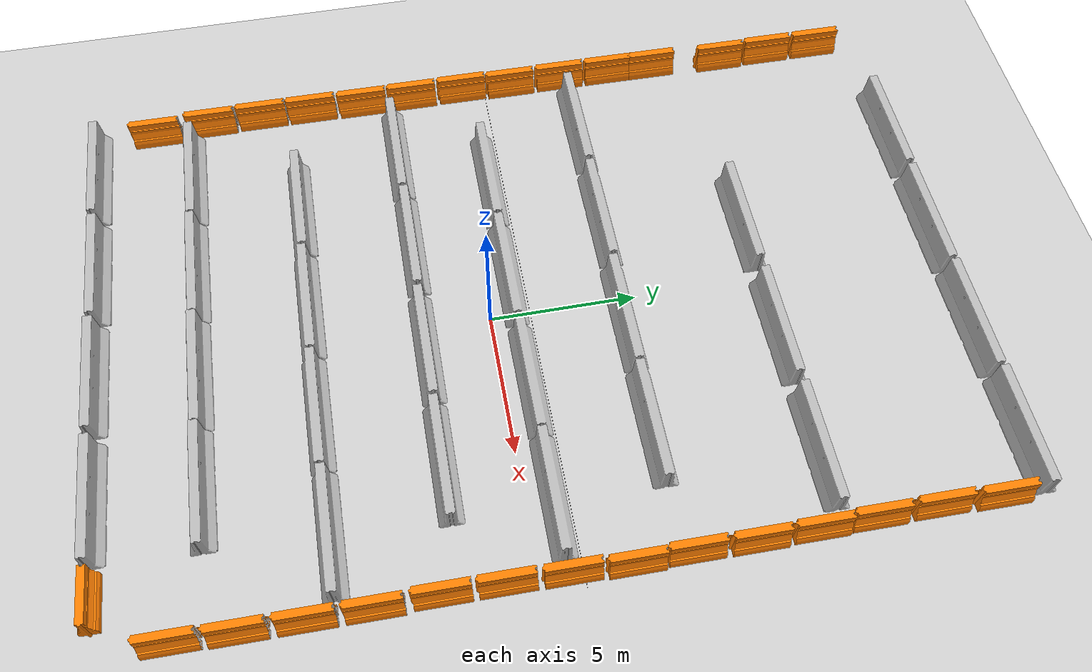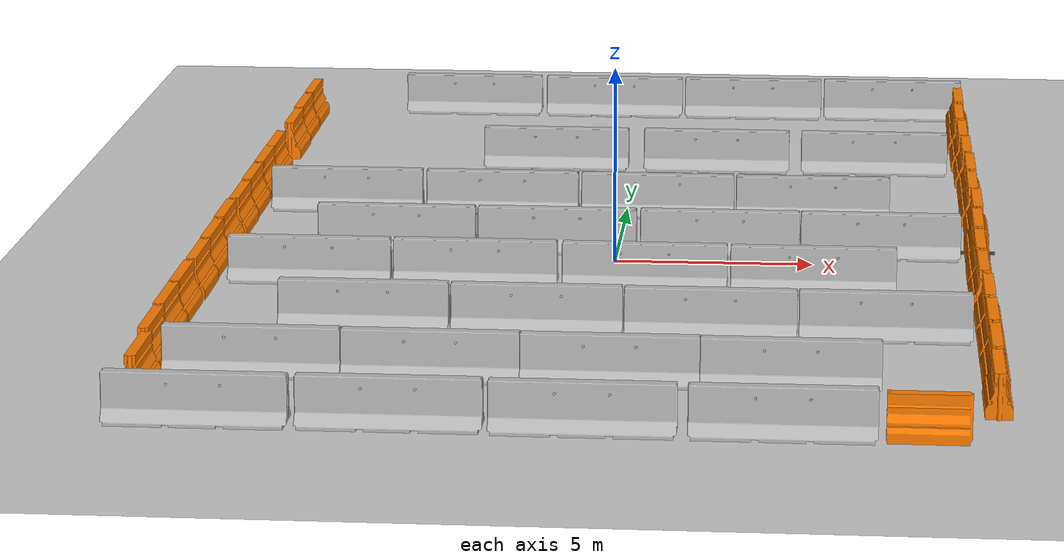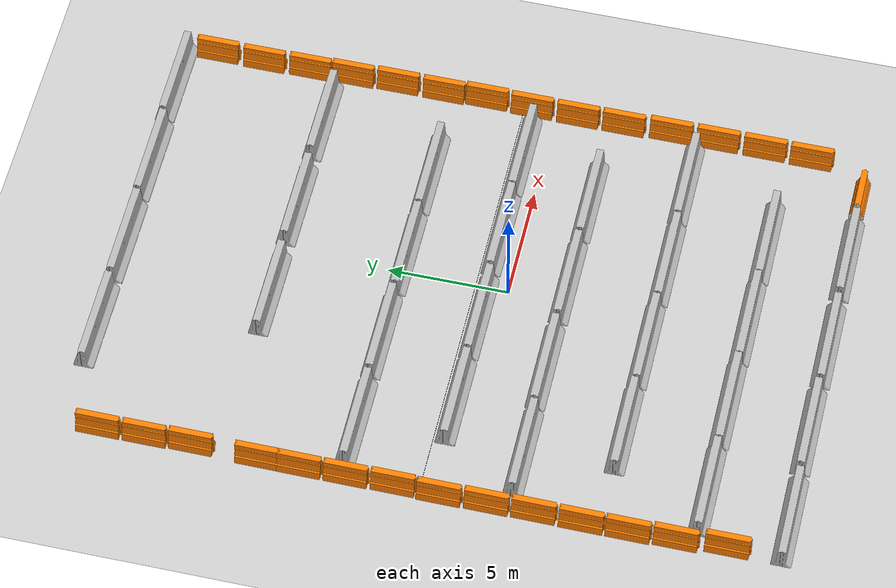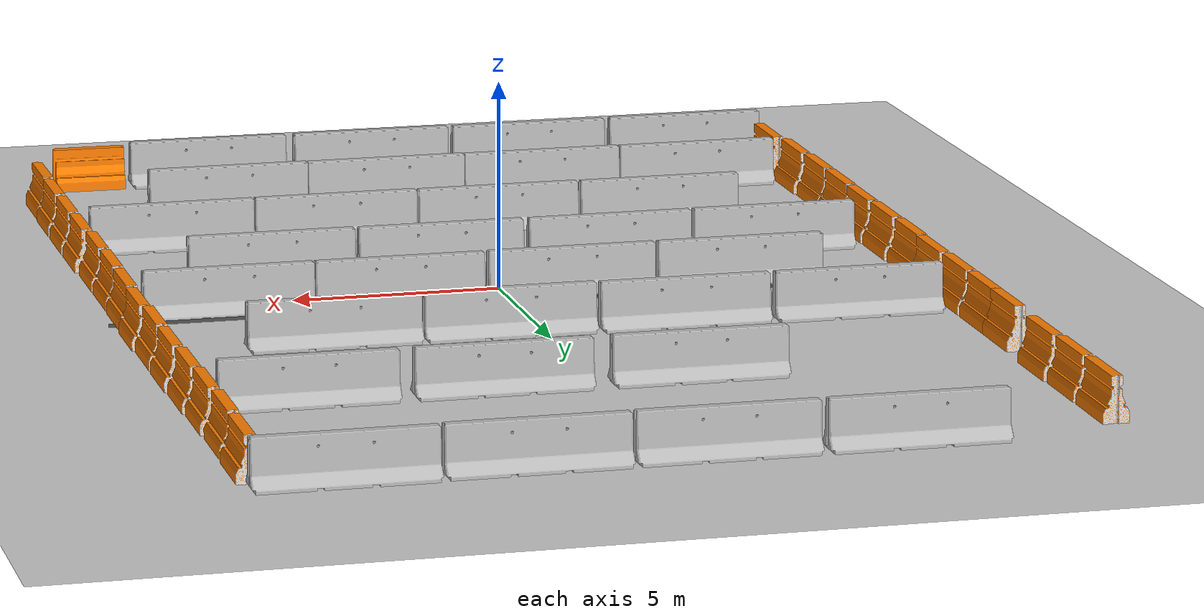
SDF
<sdf version="1.6">
 <world name="default">
  <light name="sun" type="directional">
   <pose>0 0 10 0 -0 0</pose>
   <diffuse>0.8 0.8 0.8 1</diffuse>
   <specular>0.2 0.2 0.2 1</specular>
   <attenuation>
    <range>1000</range>
    <constant>0.9</constant>
    <linear>0.01</linear>
    <quadratic>0.001</quadratic>
   </attenuation>
   <direction>-0.5 0.1 -0.9</direction>
  </light>
  <model name="ground_plane">
   <static>1</static>
   <link name="link">
    <collision name="collision">
     <geometry><plane><normal>0 0 1</normal><size>100 100</size></plane></geometry>
     <surface>
      <contact><collide_bitmask>65535</collide_bitmask></contact>
      <friction><ode><mu>100</mu><mu2>50</mu2></ode></friction>
     </surface>
    </collision>
    <visual name="visual">
     <cast_shadows>0</cast_shadows>
     <geometry><plane><normal>0 0 1</normal><size>100 100</size></plane></geometry>
     <material>
      <script><uri>file://media/materials/scripts/gazebo.material</uri><name>Gazebo/Grey</name></script>
     </material>
    </visual>
   </link>
  </model>
  <gravity>0 0 -9.8</gravity>
  <magnetic_field>6e-06 2.3e-05 -4.2e-05</magnetic_field>
  <atmosphere type="adiabatic"/>
  <physics name="default_physics" default="0" type="ode">
   <max_step_size>0.001</max_step_size>
   <real_time_factor>1</real_time_factor>
   <real_time_update_rate>1000</real_time_update_rate>
  </physics>
  <scene><ambient>0.4 0.4 0.4 1</ambient><background>0.7 0.7 0.7 1</background><shadows>1</shadows></scene>
  <audio><device>default</device></audio>
  <spherical_coordinates>
   <surface_model>EARTH_WGS84</surface_model>
   <latitude_deg>0</latitude_deg>
   <longitude_deg>0</longitude_deg>
   <elevation>0</elevation>
   <heading_deg>0</heading_deg>
  </spherical_coordinates>
  <model name="drc_practice_organge_jersey_barrier">
   <static>1</static>
   <link name="link">
    <visual name="visual">
     <geometry>
      <mesh><uri>model://drc_practice_orange_jersey_barrier/meshes/jersey_barrier.dae</uri></mesh>
     </geometry>
    </visual>
    <collision name="collision">
     <geometry>
      <mesh><uri>model://drc_practice_orange_jersey_barrier/meshes/jersey_barrier.dae</uri></mesh>
     </geometry>
    </collision>
   </link>
   <pose>-10.0317 -8.91698 0 0 -0 0</pose>
  </model>
  <model name="drc_practice_organge_jersey_barrier_clone">
   <static>1</static>
   <link name="link">
    <visual name="visual">
     <geometry>
      <mesh><uri>model://drc_practice_orange_jersey_barrier/meshes/jersey_barrier.dae</uri></mesh>
     </geometry>
    </visual>
    <collision name="collision">
     <geometry>
      <mesh><uri>model://drc_practice_orange_jersey_barrier/meshes/jersey_barrier.dae</uri></mesh>
     </geometry>
    </collision>
   </link>
   <pose>-10.0715 -7.03277 0 0 -0 0</pose>
  </model>
  <model name="drc_practice_organge_jersey_barrier_clone_0">
   <static>1</static>
   <link name="link">
    <visual name="visual">
     <geometry>
      <mesh><uri>model://drc_practice_orange_jersey_barrier/meshes/jersey_barrier.dae</uri></mesh>
     </geometry>
    </visual>
    <collision name="collision">
     <geometry>
      <mesh><uri>model://drc_practice_orange_jersey_barrier/meshes/jersey_barrier.dae</uri></mesh>
     </geometry>
    </collision>
   </link>
   <pose>-10.0681 -5.17272 0 0 -0 0</pose>
  </model>
  <model name="drc_practice_organge_jersey_barrier_clone_1">
   <static>1</static>
   <link name="link">
    <visual name="visual">
     <geometry>
      <mesh><uri>model://drc_practice_orange_jersey_barrier/meshes/jersey_barrier.dae</uri></mesh>
     </geometry>
    </visual>
    <collision name="collision">
     <geometry>
      <mesh><uri>model://drc_practice_orange_jersey_barrier/meshes/jersey_barrier.dae</uri></mesh>
     </geometry>
    </collision>
   </link>
   <pose>-10.0404 -3.26949 0 0 -0 0</pose>
  </model>
  <model name="drc_practice_organge_jersey_barrier_clone_2">
   <static>1</static>
   <link name="link">
    <visual name="visual">
     <geometry>
      <mesh><uri>model://drc_practice_orange_jersey_barrier/meshes/jersey_barrier.dae</uri></mesh>
     </geometry>
    </visual>
    <collision name="collision">
     <geometry>
      <mesh><uri>model://drc_practice_orange_jersey_barrier/meshes/jersey_barrier.dae</uri></mesh>
     </geometry>
    </collision>
   </link>
   <pose>-10.0581 -1.38628 0 0 -0 0</pose>
  </model>
  <model name="drc_practice_organge_jersey_barrier_clone_3">
   <static>1</static>
   <link name="link">
    <visual name="visual">
     <geometry>
      <mesh><uri>model://drc_practice_orange_jersey_barrier/meshes/jersey_barrier.dae</uri></mesh>
     </geometry>
    </visual>
    <collision name="collision">
     <geometry>
      <mesh><uri>model://drc_practice_orange_jersey_barrier/meshes/jersey_barrier.dae</uri></mesh>
     </geometry>
    </collision>
   </link>
   <pose>-10.0747 0.519144 0 0 -0 0</pose>
  </model>
  <model name="drc_practice_organge_jersey_barrier_clone_4">
   <static>1</static>
   <link name="link">
    <visual name="visual">
     <geometry>
      <mesh><uri>model://drc_practice_orange_jersey_barrier/meshes/jersey_barrier.dae</uri></mesh>
     </geometry>
    </visual>
    <collision name="collision">
     <geometry>
      <mesh><uri>model://drc_practice_orange_jersey_barrier/meshes/jersey_barrier.dae</uri></mesh>
     </geometry>
    </collision>
   </link>
   <pose>-10.0272 2.37705 0 0 -0 0</pose>
  </model>
  <model name="drc_practice_organge_jersey_barrier_clone_5">
   <static>1</static>
   <link name="link">
    <visual name="visual">
     <geometry>
      <mesh><uri>model://drc_practice_orange_jersey_barrier/meshes/jersey_barrier.dae</uri></mesh>
     </geometry>
    </visual>
    <collision name="collision">
     <geometry>
      <mesh><uri>model://drc_practice_orange_jersey_barrier/meshes/jersey_barrier.dae</uri></mesh>
     </geometry>
    </collision>
   </link>
   <pose>-10.0437 4.28242 0 0 -0 0</pose>
  </model>
  <model name="drc_practice_organge_jersey_barrier_clone_6">
   <static>1</static>
   <link name="link">
    <visual name="visual">
     <geometry>
      <mesh><uri>model://drc_practice_orange_jersey_barrier/meshes/jersey_barrier.dae</uri></mesh>
     </geometry>
    </visual>
    <collision name="collision">
     <geometry>
      <mesh><uri>model://drc_practice_orange_jersey_barrier/meshes/jersey_barrier.dae</uri></mesh>
     </geometry>
    </collision>
   </link>
   <pose>-10.0392 6.1646 0 0 -0 0</pose>
  </model>
  <model name="drc_practice_organge_jersey_barrier_clone_6_clone">
   <static>1</static>
   <link name="link">
    <visual name="visual">
     <geometry>
      <mesh><uri>model://drc_practice_orange_jersey_barrier/meshes/jersey_barrier.dae</uri></mesh>
     </geometry>
    </visual>
    <collision name="collision">
     <geometry>
      <mesh><uri>model://drc_practice_orange_jersey_barrier/meshes/jersey_barrier.dae</uri></mesh>
     </geometry>
    </collision>
   </link>
   <pose>-10.0278 7.86774 0 0 -0 0</pose>
  </model>
  <model name="drc_practice_organge_jersey_barrier_clone_7">
   <static>1</static>
   <link name="link">
    <visual name="visual">
     <geometry>
      <mesh><uri>model://drc_practice_orange_jersey_barrier/meshes/jersey_barrier.dae</uri></mesh>
     </geometry>
    </visual>
    <collision name="collision">
     <geometry>
      <mesh><uri>model://drc_practice_orange_jersey_barrier/meshes/jersey_barrier.dae</uri></mesh>
     </geometry>
    </collision>
   </link>
   <pose>9.19887 -8.85647 0 0 -0 0</pose>
  </model>
  <model name="drc_practice_organge_jersey_barrier_clone_8">
   <static>1</static>
   <link name="link">
    <visual name="visual">
     <geometry>
      <mesh><uri>model://drc_practice_orange_jersey_barrier/meshes/jersey_barrier.dae</uri></mesh>
     </geometry>
    </visual>
    <collision name="collision">
     <geometry>
      <mesh><uri>model://drc_practice_orange_jersey_barrier/meshes/jersey_barrier.dae</uri></mesh>
     </geometry>
    </collision>
   </link>
   <pose>9.2043 -6.87317 0 0 -0 0</pose>
  </model>
  <model name="drc_practice_organge_jersey_barrier_clone_9">
   <static>1</static>
   <link name="link">
    <visual name="visual">
     <geometry>
      <mesh><uri>model://drc_practice_orange_jersey_barrier/meshes/jersey_barrier.dae</uri></mesh>
     </geometry>
    </visual>
    <collision name="collision">
     <geometry>
      <mesh><uri>model://drc_practice_orange_jersey_barrier/meshes/jersey_barrier.dae</uri></mesh>
     </geometry>
    </collision>
   </link>
   <pose>9.20732 -4.89311 0 0 -0 0</pose>
  </model>
  <model name="drc_practice_organge_jersey_barrier_clone_10">
   <static>1</static>
   <link name="link">
    <visual name="visual">
     <geometry>
      <mesh><uri>model://drc_practice_orange_jersey_barrier/meshes/jersey_barrier.dae</uri></mesh>
     </geometry>
    </visual>
    <collision name="collision">
     <geometry>
      <mesh><uri>model://drc_practice_orange_jersey_barrier/meshes/jersey_barrier.dae</uri></mesh>
     </geometry>
    </collision>
   </link>
   <pose>9.15103 -2.89169 0 0 -0 0</pose>
  </model>
  <model name="drc_practice_organge_jersey_barrier_clone_11">
   <static>1</static>
   <link name="link">
    <visual name="visual">
     <geometry>
      <mesh><uri>model://drc_practice_orange_jersey_barrier/meshes/jersey_barrier.dae</uri></mesh>
     </geometry>
    </visual>
    <collision name="collision">
     <geometry>
      <mesh><uri>model://drc_practice_orange_jersey_barrier/meshes/jersey_barrier.dae</uri></mesh>
     </geometry>
    </collision>
   </link>
   <pose>9.15252 -0.950869 0 0 -0 0</pose>
  </model>
  <model name="drc_practice_organge_jersey_barrier_clone_12">
   <static>1</static>
   <link name="link">
    <visual name="visual">
     <geometry>
      <mesh><uri>model://drc_practice_orange_jersey_barrier/meshes/jersey_barrier.dae</uri></mesh>
     </geometry>
    </visual>
    <collision name="collision">
     <geometry>
      <mesh><uri>model://drc_practice_orange_jersey_barrier/meshes/jersey_barrier.dae</uri></mesh>
     </geometry>
    </collision>
   </link>
   <pose>9.17696 1.01342 0 0 -0 0</pose>
  </model>
  <model name="drc_practice_organge_jersey_barrier_clone_13">
   <static>1</static>
   <link name="link">
    <visual name="visual">
     <geometry>
      <mesh><uri>model://drc_practice_orange_jersey_barrier/meshes/jersey_barrier.dae</uri></mesh>
     </geometry>
    </visual>
    <collision name="collision">
     <geometry>
      <mesh><uri>model://drc_practice_orange_jersey_barrier/meshes/jersey_barrier.dae</uri></mesh>
     </geometry>
    </collision>
   </link>
   <pose>9.22815 2.94443 0 0 -0 0</pose>
  </model>
  <model name="drc_practice_organge_jersey_barrier_clone_14">
   <static>1</static>
   <link name="link">
    <visual name="visual">
     <geometry>
      <mesh><uri>model://drc_practice_orange_jersey_barrier/meshes/jersey_barrier.dae</uri></mesh>
     </geometry>
    </visual>
    <collision name="collision">
     <geometry>
      <mesh><uri>model://drc_practice_orange_jersey_barrier/meshes/jersey_barrier.dae</uri></mesh>
     </geometry>
    </collision>
   </link>
   <pose>9.17576 4.78674 0 0 -0 0</pose>
  </model>
  <model name="drc_practice_organge_jersey_barrier_clone_15">
   <static>1</static>
   <link name="link">
    <visual name="visual">
     <geometry>
      <mesh><uri>model://drc_practice_orange_jersey_barrier/meshes/jersey_barrier.dae</uri></mesh>
     </geometry>
    </visual>
    <collision name="collision">
     <geometry>
      <mesh><uri>model://drc_practice_orange_jersey_barrier/meshes/jersey_barrier.dae</uri></mesh>
     </geometry>
    </collision>
   </link>
   <pose>9.19199 6.75734 0 0 -0 0</pose>
  </model>
  <model name="drc_practice_organge_jersey_barrier_clone_16">
   <static>1</static>
   <link name="link">
    <visual name="visual">
     <geometry>
      <mesh><uri>model://drc_practice_orange_jersey_barrier/meshes/jersey_barrier.dae</uri></mesh>
     </geometry>
    </visual>
    <collision name="collision">
     <geometry>
      <mesh><uri>model://drc_practice_orange_jersey_barrier/meshes/jersey_barrier.dae</uri></mesh>
     </geometry>
    </collision>
   </link>
   <pose>9.15564 8.69157 0 0 -0 0</pose>
  </model>
  <model name="jersey_barrier_clone_2">
   <static>1</static>
   <link name="link">
    <visual name="visual">
     <geometry><mesh><uri>model://jersey_barrier/meshes/jersey_barrier.dae</uri></mesh></geometry>
    </visual>
    <collision name="upright">
     <pose>0 0 0.5715 0 -0 0</pose>
     <geometry><box><size>4.06542 0.3063 1.143</size></box></geometry>
    </collision>
    <collision name="base">
     <pose>0 0 0.032258 0 -0 0</pose>
     <geometry><box><size>4.06542 0.8107 0.064516</size></box></geometry>
    </collision>
    <collision name="base2">
     <pose>0 0 0.1 0 -0 0</pose>
     <geometry><box><size>4.06542 0.65 0.1</size></box></geometry>
    </collision>
    <collision name="base3">
     <pose>0 0 0.2 0 -0 0</pose>
     <geometry><box><size>4.06542 0.5 0.1</size></box></geometry>
    </collision>
    <collision name="left-angle">
     <pose>0 -0.224 0.2401 0.9 -0 0</pose>
     <geometry><box><size>4.06542 0.5 0.064516</size></box></geometry>
    </collision>
    <collision name="right-angle">
     <pose>0 0.224 0.2401 -0.9 0 0</pose>
     <geometry><box><size>4.06542 0.5 0.064516</size></box></geometry>
    </collision>
   </link>
   <pose>6.6228 9.40018 0 0 -0 0</pose>
  </model>
  <model name="jersey_barrier_clone_3">
   <static>1</static>
   <link name="link">
    <visual name="visual">
     <geometry><mesh><uri>model://jersey_barrier/meshes/jersey_barrier.dae</uri></mesh></geometry>
    </visual>
    <collision name="upright">
     <pose>0 0 0.5715 0 -0 0</pose>
     <geometry><box><size>4.06542 0.3063 1.143</size></box></geometry>
    </collision>
    <collision name="base">
     <pose>0 0 0.032258 0 -0 0</pose>
     <geometry><box><size>4.06542 0.8107 0.064516</size></box></geometry>
    </collision>
    <collision name="base2">
     <pose>0 0 0.1 0 -0 0</pose>
     <geometry><box><size>4.06542 0.65 0.1</size></box></geometry>
    </collision>
    <collision name="base3">
     <pose>0 0 0.2 0 -0 0</pose>
     <geometry><box><size>4.06542 0.5 0.1</size></box></geometry>
    </collision>
    <collision name="left-angle">
     <pose>0 -0.224 0.2401 0.9 -0 0</pose>
     <geometry><box><size>4.06542 0.5 0.064516</size></box></geometry>
    </collision>
    <collision name="right-angle">
     <pose>0 0.224 0.2401 -0.9 0 0</pose>
     <geometry><box><size>4.06542 0.5 0.064516</size></box></geometry>
    </collision>
   </link>
   <pose>2.21434 9.38509 0 0 -0 0</pose>
  </model>
  <model name="jersey_barrier_clone_4">
   <static>1</static>
   <link name="link">
    <visual name="visual">
     <geometry><mesh><uri>model://jersey_barrier/meshes/jersey_barrier.dae</uri></mesh></geometry>
    </visual>
    <collision name="upright">
     <pose>0 0 0.5715 0 -0 0</pose>
     <geometry><box><size>4.06542 0.3063 1.143</size></box></geometry>
    </collision>
    <collision name="base">
     <pose>0 0 0.032258 0 -0 0</pose>
     <geometry><box><size>4.06542 0.8107 0.064516</size></box></geometry>
    </collision>
    <collision name="base2">
     <pose>0 0 0.1 0 -0 0</pose>
     <geometry><box><size>4.06542 0.65 0.1</size></box></geometry>
    </collision>
    <collision name="base3">
     <pose>0 0 0.2 0 -0 0</pose>
     <geometry><box><size>4.06542 0.5 0.1</size></box></geometry>
    </collision>
    <collision name="left-angle">
     <pose>0 -0.224 0.2401 0.9 -0 0</pose>
     <geometry><box><size>4.06542 0.5 0.064516</size></box></geometry>
    </collision>
    <collision name="right-angle">
     <pose>0 0.224 0.2401 -0.9 0 0</pose>
     <geometry><box><size>4.06542 0.5 0.064516</size></box></geometry>
    </collision>
   </link>
   <pose>-2.29272 9.36712 0 0 -0 0</pose>
  </model>
  <model name="jersey_barrier_clone_6">
   <static>1</static>
   <link name="link">
    <visual name="visual">
     <geometry><mesh><uri>model://jersey_barrier/meshes/jersey_barrier.dae</uri></mesh></geometry>
    </visual>
    <collision name="upright">
     <pose>0 0 0.5715 0 -0 0</pose>
     <geometry><box><size>4.06542 0.3063 1.143</size></box></geometry>
    </collision>
    <collision name="base">
     <pose>0 0 0.032258 0 -0 0</pose>
     <geometry><box><size>4.06542 0.8107 0.064516</size></box></geometry>
    </collision>
    <collision name="base2">
     <pose>0 0 0.1 0 -0 0</pose>
     <geometry><box><size>4.06542 0.65 0.1</size></box></geometry>
    </collision>
    <collision name="base3">
     <pose>0 0 0.2 0 -0 0</pose>
     <geometry><box><size>4.06542 0.5 0.1</size></box></geometry>
    </collision>
    <collision name="left-angle">
     <pose>0 -0.224 0.2401 0.9 -0 0</pose>
     <geometry><box><size>4.06542 0.5 0.064516</size></box></geometry>
    </collision>
    <collision name="right-angle">
     <pose>0 0.224 0.2401 -0.9 0 0</pose>
     <geometry><box><size>4.06542 0.5 0.064516</size></box></geometry>
    </collision>
   </link>
   <pose>6.76823 -6.01536 0 0 -0 0</pose>
  </model>
  <model name="jersey_barrier_clone_7">
   <static>1</static>
   <link name="link">
    <visual name="visual">
     <geometry><mesh><uri>model://jersey_barrier/meshes/jersey_barrier.dae</uri></mesh></geometry>
    </visual>
    <collision name="upright">
     <pose>0 0 0.5715 0 -0 0</pose>
     <geometry><box><size>4.06542 0.3063 1.143</size></box></geometry>
    </collision>
    <collision name="base">
     <pose>0 0 0.032258 0 -0 0</pose>
     <geometry><box><size>4.06542 0.8107 0.064516</size></box></geometry>
    </collision>
    <collision name="base2">
     <pose>0 0 0.1 0 -0 0</pose>
     <geometry><box><size>4.06542 0.65 0.1</size></box></geometry>
    </collision>
    <collision name="base3">
     <pose>0 0 0.2 0 -0 0</pose>
     <geometry><box><size>4.06542 0.5 0.1</size></box></geometry>
    </collision>
    <collision name="left-angle">
     <pose>0 -0.224 0.2401 0.9 -0 0</pose>
     <geometry><box><size>4.06542 0.5 0.064516</size></box></geometry>
    </collision>
    <collision name="right-angle">
     <pose>0 0.224 0.2401 -0.9 0 0</pose>
     <geometry><box><size>4.06542 0.5 0.064516</size></box></geometry>
    </collision>
   </link>
   <pose>2.66171 -6.03079 0 0 -0 0</pose>
  </model>
  <model name="jersey_barrier_clone_8">
   <static>1</static>
   <link name="link">
    <visual name="visual">
     <geometry><mesh><uri>model://jersey_barrier/meshes/jersey_barrier.dae</uri></mesh></geometry>
    </visual>
    <collision name="upright">
     <pose>0 0 0.5715 0 -0 0</pose>
     <geometry><box><size>4.06542 0.3063 1.143</size></box></geometry>
    </collision>
    <collision name="base">
     <pose>0 0 0.032258 0 -0 0</pose>
     <geometry><box><size>4.06542 0.8107 0.064516</size></box></geometry>
    </collision>
    <collision name="base2">
     <pose>0 0 0.1 0 -0 0</pose>
     <geometry><box><size>4.06542 0.65 0.1</size></box></geometry>
    </collision>
    <collision name="base3">
     <pose>0 0 0.2 0 -0 0</pose>
     <geometry><box><size>4.06542 0.5 0.1</size></box></geometry>
    </collision>
    <collision name="left-angle">
     <pose>0 -0.224 0.2401 0.9 -0 0</pose>
     <geometry><box><size>4.06542 0.5 0.064516</size></box></geometry>
    </collision>
    <collision name="right-angle">
     <pose>0 0.224 0.2401 -0.9 0 0</pose>
     <geometry><box><size>4.06542 0.5 0.064516</size></box></geometry>
    </collision>
   </link>
   <pose>-1.44199 -5.9885 0 0 -0 0</pose>
  </model>
  <model name="jersey_barrier_clone_9">
   <static>1</static>
   <link name="link">
    <visual name="visual">
     <geometry><mesh><uri>model://jersey_barrier/meshes/jersey_barrier.dae</uri></mesh></geometry>
    </visual>
    <collision name="upright">
     <pose>0 0 0.5715 0 -0 0</pose>
     <geometry><box><size>4.06542 0.3063 1.143</size></box></geometry>
    </collision>
    <collision name="base">
     <pose>0 0 0.032258 0 -0 0</pose>
     <geometry><box><size>4.06542 0.8107 0.064516</size></box></geometry>
    </collision>
    <collision name="base2">
     <pose>0 0 0.1 0 -0 0</pose>
     <geometry><box><size>4.06542 0.65 0.1</size></box></geometry>
    </collision>
    <collision name="base3">
     <pose>0 0 0.2 0 -0 0</pose>
     <geometry><box><size>4.06542 0.5 0.1</size></box></geometry>
    </collision>
    <collision name="left-angle">
     <pose>0 -0.224 0.2401 0.9 -0 0</pose>
     <geometry><box><size>4.06542 0.5 0.064516</size></box></geometry>
    </collision>
    <collision name="right-angle">
     <pose>0 0.224 0.2401 -0.9 0 0</pose>
     <geometry><box><size>4.06542 0.5 0.064516</size></box></geometry>
    </collision>
   </link>
   <pose>-5.56722 -5.94639 0 0 -0 0</pose>
  </model>
  <model name="jersey_barrier_clone_9_clone">
   <static>1</static>
   <link name="link">
    <visual name="visual">
     <geometry><mesh><uri>model://jersey_barrier/meshes/jersey_barrier.dae</uri></mesh></geometry>
    </visual>
    <collision name="upright">
     <pose>0 0 0.5715 0 -0 0</pose>
     <geometry><box><size>4.06542 0.3063 1.143</size></box></geometry>
    </collision>
    <collision name="base">
     <pose>0 0 0.032258 0 -0 0</pose>
     <geometry><box><size>4.06542 0.8107 0.064516</size></box></geometry>
    </collision>
    <collision name="base2">
     <pose>0 0 0.1 0 -0 0</pose>
     <geometry><box><size>4.06542 0.65 0.1</size></box></geometry>
    </collision>
    <collision name="base3">
     <pose>0 0 0.2 0 -0 0</pose>
     <geometry><box><size>4.06542 0.5 0.1</size></box></geometry>
    </collision>
    <collision name="left-angle">
     <pose>0 -0.224 0.2401 0.9 -0 0</pose>
     <geometry><box><size>4.06542 0.5 0.064516</size></box></geometry>
    </collision>
    <collision name="right-angle">
     <pose>0 0.224 0.2401 -0.9 0 0</pose>
     <geometry><box><size>4.06542 0.5 0.064516</size></box></geometry>
    </collision>
   </link>
   <pose>-7.45063 -2.2681 0 0 -0 0</pose>
  </model>
  <model name="jersey_barrier_clone_9_clone_0">
   <static>1</static>
   <link name="link">
    <visual name="visual">
     <geometry><mesh><uri>model://jersey_barrier/meshes/jersey_barrier.dae</uri></mesh></geometry>
    </visual>
    <collision name="upright">
     <pose>0 0 0.5715 0 -0 0</pose>
     <geometry><box><size>4.06542 0.3063 1.143</size></box></geometry>
    </collision>
    <collision name="base">
     <pose>0 0 0.032258 0 -0 0</pose>
     <geometry><box><size>4.06542 0.8107 0.064516</size></box></geometry>
    </collision>
    <collision name="base2">
     <pose>0 0 0.1 0 -0 0</pose>
     <geometry><box><size>4.06542 0.65 0.1</size></box></geometry>
    </collision>
    <collision name="base3">
     <pose>0 0 0.2 0 -0 0</pose>
     <geometry><box><size>4.06542 0.5 0.1</size></box></geometry>
    </collision>
    <collision name="left-angle">
     <pose>0 -0.224 0.2401 0.9 -0 0</pose>
     <geometry><box><size>4.06542 0.5 0.064516</size></box></geometry>
    </collision>
    <collision name="right-angle">
     <pose>0 0.224 0.2401 -0.9 0 0</pose>
     <geometry><box><size>4.06542 0.5 0.064516</size></box></geometry>
    </collision>
   </link>
   <pose>-3.31169 -2.24733 0 0 -0 0</pose>
  </model>
  <model name="jersey_barrier_clone_9_clone_1">
   <static>1</static>
   <link name="link">
    <visual name="visual">
     <geometry><mesh><uri>model://jersey_barrier/meshes/jersey_barrier.dae</uri></mesh></geometry>
    </visual>
    <collision name="upright">
     <pose>0 0 0.5715 0 -0 0</pose>
     <geometry><box><size>4.06542 0.3063 1.143</size></box></geometry>
    </collision>
    <collision name="base">
     <pose>0 0 0.032258 0 -0 0</pose>
     <geometry><box><size>4.06542 0.8107 0.064516</size></box></geometry>
    </collision>
    <collision name="base2">
     <pose>0 0 0.1 0 -0 0</pose>
     <geometry><box><size>4.06542 0.65 0.1</size></box></geometry>
    </collision>
    <collision name="base3">
     <pose>0 0 0.2 0 -0 0</pose>
     <geometry><box><size>4.06542 0.5 0.1</size></box></geometry>
    </collision>
    <collision name="left-angle">
     <pose>0 -0.224 0.2401 0.9 -0 0</pose>
     <geometry><box><size>4.06542 0.5 0.064516</size></box></geometry>
    </collision>
    <collision name="right-angle">
     <pose>0 0.224 0.2401 -0.9 0 0</pose>
     <geometry><box><size>4.06542 0.5 0.064516</size></box></geometry>
    </collision>
   </link>
   <pose>0.887936 -2.28146 0 0 -0 0</pose>
  </model>
  <model name="jersey_barrier_clone_9_clone_2">
   <static>1</static>
   <link name="link">
    <visual name="visual">
     <geometry><mesh><uri>model://jersey_barrier/meshes/jersey_barrier.dae</uri></mesh></geometry>
    </visual>
    <collision name="upright">
     <pose>0 0 0.5715 0 -0 0</pose>
     <geometry><box><size>4.06542 0.3063 1.143</size></box></geometry>
    </collision>
    <collision name="base">
     <pose>0 0 0.032258 0 -0 0</pose>
     <geometry><box><size>4.06542 0.8107 0.064516</size></box></geometry>
    </collision>
    <collision name="base2">
     <pose>0 0 0.1 0 -0 0</pose>
     <geometry><box><size>4.06542 0.65 0.1</size></box></geometry>
    </collision>
    <collision name="base3">
     <pose>0 0 0.2 0 -0 0</pose>
     <geometry><box><size>4.06542 0.5 0.1</size></box></geometry>
    </collision>
    <collision name="left-angle">
     <pose>0 -0.224 0.2401 0.9 -0 0</pose>
     <geometry><box><size>4.06542 0.5 0.064516</size></box></geometry>
    </collision>
    <collision name="right-angle">
     <pose>0 0.224 0.2401 -0.9 0 0</pose>
     <geometry><box><size>4.06542 0.5 0.064516</size></box></geometry>
    </collision>
   </link>
   <pose>5.03883 -2.31675 0 0 -0 0</pose>
  </model>
  <model name="jersey_barrier_clone_9_clone_2_clone">
   <static>1</static>
   <link name="link">
    <visual name="visual">
     <geometry><mesh><uri>model://jersey_barrier/meshes/jersey_barrier.dae</uri></mesh></geometry>
    </visual>
    <collision name="upright">
     <pose>0 0 0.5715 0 -0 0</pose>
     <geometry><box><size>4.06542 0.3063 1.143</size></box></geometry>
    </collision>
    <collision name="base">
     <pose>0 0 0.032258 0 -0 0</pose>
     <geometry><box><size>4.06542 0.8107 0.064516</size></box></geometry>
    </collision>
    <collision name="base2">
     <pose>0 0 0.1 0 -0 0</pose>
     <geometry><box><size>4.06542 0.65 0.1</size></box></geometry>
    </collision>
    <collision name="base3">
     <pose>0 0 0.2 0 -0 0</pose>
     <geometry><box><size>4.06542 0.5 0.1</size></box></geometry>
    </collision>
    <collision name="left-angle">
     <pose>0 -0.224 0.2401 0.9 -0 0</pose>
     <geometry><box><size>4.06542 0.5 0.064516</size></box></geometry>
    </collision>
    <collision name="right-angle">
     <pose>0 0.224 0.2401 -0.9 0 0</pose>
     <geometry><box><size>4.06542 0.5 0.064516</size></box></geometry>
    </collision>
   </link>
   <pose>6.7172 0.879279 0 0 -0 0</pose>
  </model>
  <model name="jersey_barrier_clone_9_clone_2_clone_0">
   <static>1</static>
   <link name="link">
    <visual name="visual">
     <geometry><mesh><uri>model://jersey_barrier/meshes/jersey_barrier.dae</uri></mesh></geometry>
    </visual>
    <collision name="upright">
     <pose>0 0 0.5715 0 -0 0</pose>
     <geometry><box><size>4.06542 0.3063 1.143</size></box></geometry>
    </collision>
    <collision name="base">
     <pose>0 0 0.032258 0 -0 0</pose>
     <geometry><box><size>4.06542 0.8107 0.064516</size></box></geometry>
    </collision>
    <collision name="base2">
     <pose>0 0 0.1 0 -0 0</pose>
     <geometry><box><size>4.06542 0.65 0.1</size></box></geometry>
    </collision>
    <collision name="base3">
     <pose>0 0 0.2 0 -0 0</pose>
     <geometry><box><size>4.06542 0.5 0.1</size></box></geometry>
    </collision>
    <collision name="left-angle">
     <pose>0 -0.224 0.2401 0.9 -0 0</pose>
     <geometry><box><size>4.06542 0.5 0.064516</size></box></geometry>
    </collision>
    <collision name="right-angle">
     <pose>0 0.224 0.2401 -0.9 0 0</pose>
     <geometry><box><size>4.06542 0.5 0.064516</size></box></geometry>
    </collision>
   </link>
   <pose>2.62302 0.884714 0 0 -0 0</pose>
  </model>
  <model name="jersey_barrier_clone_9_clone_2_clone_1">
   <static>1</static>
   <link name="link">
    <visual name="visual">
     <geometry><mesh><uri>model://jersey_barrier/meshes/jersey_barrier.dae</uri></mesh></geometry>
    </visual>
    <collision name="upright">
     <pose>0 0 0.5715 0 -0 0</pose>
     <geometry><box><size>4.06542 0.3063 1.143</size></box></geometry>
    </collision>
    <collision name="base">
     <pose>0 0 0.032258 0 -0 0</pose>
     <geometry><box><size>4.06542 0.8107 0.064516</size></box></geometry>
    </collision>
    <collision name="base2">
     <pose>0 0 0.1 0 -0 0</pose>
     <geometry><box><size>4.06542 0.65 0.1</size></box></geometry>
    </collision>
    <collision name="base3">
     <pose>0 0 0.2 0 -0 0</pose>
     <geometry><box><size>4.06542 0.5 0.1</size></box></geometry>
    </collision>
    <collision name="left-angle">
     <pose>0 -0.224 0.2401 0.9 -0 0</pose>
     <geometry><box><size>4.06542 0.5 0.064516</size></box></geometry>
    </collision>
    <collision name="right-angle">
     <pose>0 0.224 0.2401 -0.9 0 0</pose>
     <geometry><box><size>4.06542 0.5 0.064516</size></box></geometry>
    </collision>
   </link>
   <pose>-1.54666 0.859967 0 0 -0 0</pose>
  </model>
  <model name="jersey_barrier_clone_9_clone_2_clone_2">
   <static>1</static>
   <link name="link">
    <visual name="visual">
     <geometry><mesh><uri>model://jersey_barrier/meshes/jersey_barrier.dae</uri></mesh></geometry>
    </visual>
    <collision name="upright">
     <pose>0 0 0.5715 0 -0 0</pose>
     <geometry><box><size>4.06542 0.3063 1.143</size></box></geometry>
    </collision>
    <collision name="base">
     <pose>0 0 0.032258 0 -0 0</pose>
     <geometry><box><size>4.06542 0.8107 0.064516</size></box></geometry>
    </collision>
    <collision name="base2">
     <pose>0 0 0.1 0 -0 0</pose>
     <geometry><box><size>4.06542 0.65 0.1</size></box></geometry>
    </collision>
    <collision name="base3">
     <pose>0 0 0.2 0 -0 0</pose>
     <geometry><box><size>4.06542 0.5 0.1</size></box></geometry>
    </collision>
    <collision name="left-angle">
     <pose>0 -0.224 0.2401 0.9 -0 0</pose>
     <geometry><box><size>4.06542 0.5 0.064516</size></box></geometry>
    </collision>
    <collision name="right-angle">
     <pose>0 0.224 0.2401 -0.9 0 0</pose>
     <geometry><box><size>4.06542 0.5 0.064516</size></box></geometry>
    </collision>
   </link>
   <pose>-5.68538 0.864009 0 0 -0 0</pose>
  </model>
  <model name="jersey_barrier_clone_9_clone_2_clone_3">
   <static>1</static>
   <link name="link">
    <visual name="visual">
     <geometry><mesh><uri>model://jersey_barrier/meshes/jersey_barrier.dae</uri></mesh></geometry>
    </visual>
    <collision name="upright">
     <pose>0 0 0.5715 0 -0 0</pose>
     <geometry><box><size>4.06542 0.3063 1.143</size></box></geometry>
    </collision>
    <collision name="base">
     <pose>0 0 0.032258 0 -0 0</pose>
     <geometry><box><size>4.06542 0.8107 0.064516</size></box></geometry>
    </collision>
    <collision name="base2">
     <pose>0 0 0.1 0 -0 0</pose>
     <geometry><box><size>4.06542 0.65 0.1</size></box></geometry>
    </collision>
    <collision name="base3">
     <pose>0 0 0.2 0 -0 0</pose>
     <geometry><box><size>4.06542 0.5 0.1</size></box></geometry>
    </collision>
    <collision name="left-angle">
     <pose>0 -0.224 0.2401 0.9 -0 0</pose>
     <geometry><box><size>4.06542 0.5 0.064516</size></box></geometry>
    </collision>
    <collision name="right-angle">
     <pose>0 0.224 0.2401 -0.9 0 0</pose>
     <geometry><box><size>4.06542 0.5 0.064516</size></box></geometry>
    </collision>
   </link>
   <pose>-7.50847 4.49224 0 0 -0 0</pose>
  </model>
  <model name="jersey_barrier_clone_9_clone_2_clone_4">
   <static>1</static>
   <link name="link">
    <visual name="visual">
     <geometry><mesh><uri>model://jersey_barrier/meshes/jersey_barrier.dae</uri></mesh></geometry>
    </visual>
    <collision name="upright">
     <pose>0 0 0.5715 0 -0 0</pose>
     <geometry><box><size>4.06542 0.3063 1.143</size></box></geometry>
    </collision>
    <collision name="base">
     <pose>0 0 0.032258 0 -0 0</pose>
     <geometry><box><size>4.06542 0.8107 0.064516</size></box></geometry>
    </collision>
    <collision name="base2">
     <pose>0 0 0.1 0 -0 0</pose>
     <geometry><box><size>4.06542 0.65 0.1</size></box></geometry>
    </collision>
    <collision name="base3">
     <pose>0 0 0.2 0 -0 0</pose>
     <geometry><box><size>4.06542 0.5 0.1</size></box></geometry>
    </collision>
    <collision name="left-angle">
     <pose>0 -0.224 0.2401 0.9 -0 0</pose>
     <geometry><box><size>4.06542 0.5 0.064516</size></box></geometry>
    </collision>
    <collision name="right-angle">
     <pose>0 0.224 0.2401 -0.9 0 0</pose>
     <geometry><box><size>4.06542 0.5 0.064516</size></box></geometry>
    </collision>
   </link>
   <pose>-3.31957 4.47818 0 0 -0 0</pose>
  </model>
  <model name="jersey_barrier_clone_9_clone_2_clone_5">
   <static>1</static>
   <link name="link">
    <visual name="visual">
     <geometry><mesh><uri>model://jersey_barrier/meshes/jersey_barrier.dae</uri></mesh></geometry>
    </visual>
    <collision name="upright">
     <pose>0 0 0.5715 0 -0 0</pose>
     <geometry><box><size>4.06542 0.3063 1.143</size></box></geometry>
    </collision>
    <collision name="base">
     <pose>0 0 0.032258 0 -0 0</pose>
     <geometry><box><size>4.06542 0.8107 0.064516</size></box></geometry>
    </collision>
    <collision name="base2">
     <pose>0 0 0.1 0 -0 0</pose>
     <geometry><box><size>4.06542 0.65 0.1</size></box></geometry>
    </collision>
    <collision name="base3">
     <pose>0 0 0.2 0 -0 0</pose>
     <geometry><box><size>4.06542 0.5 0.1</size></box></geometry>
    </collision>
    <collision name="left-angle">
     <pose>0 -0.224 0.2401 0.9 -0 0</pose>
     <geometry><box><size>4.06542 0.5 0.064516</size></box></geometry>
    </collision>
    <collision name="right-angle">
     <pose>0 0.224 0.2401 -0.9 0 0</pose>
     <geometry><box><size>4.06542 0.5 0.064516</size></box></geometry>
    </collision>
   </link>
   <pose>0.836995 4.4255 0 0 -0 0</pose>
  </model>
  <model name="jersey_barrier_clone_9_clone_2_clone_6">
   <static>1</static>
   <link name="link">
    <visual name="visual">
     <geometry><mesh><uri>model://jersey_barrier/meshes/jersey_barrier.dae</uri></mesh></geometry>
    </visual>
    <collision name="upright">
     <pose>0 0 0.5715 0 -0 0</pose>
     <geometry><box><size>4.06542 0.3063 1.143</size></box></geometry>
    </collision>
    <collision name="base">
     <pose>0 0 0.032258 0 -0 0</pose>
     <geometry><box><size>4.06542 0.8107 0.064516</size></box></geometry>
    </collision>
    <collision name="base2">
     <pose>0 0 0.1 0 -0 0</pose>
     <geometry><box><size>4.06542 0.65 0.1</size></box></geometry>
    </collision>
    <collision name="base3">
     <pose>0 0 0.2 0 -0 0</pose>
     <geometry><box><size>4.06542 0.5 0.1</size></box></geometry>
    </collision>
    <collision name="left-angle">
     <pose>0 -0.224 0.2401 0.9 -0 0</pose>
     <geometry><box><size>4.06542 0.5 0.064516</size></box></geometry>
    </collision>
    <collision name="right-angle">
     <pose>0 0.224 0.2401 -0.9 0 0</pose>
     <geometry><box><size>4.06542 0.5 0.064516</size></box></geometry>
    </collision>
   </link>
   <pose>4.95926 4.40906 0 0 -0 0</pose>
  </model>
  <model name="drc_practice_organge_jersey_barrier_clone_6_clone_clone">
   <static>1</static>
   <link name="link">
    <visual name="visual">
     <geometry>
      <mesh><uri>model://drc_practice_orange_jersey_barrier/meshes/jersey_barrier.dae</uri></mesh>
     </geometry>
    </visual>
    <collision name="collision">
     <geometry>
      <mesh><uri>model://drc_practice_orange_jersey_barrier/meshes/jersey_barrier.dae</uri></mesh>
     </geometry>
    </collision>
   </link>
   <pose>-9.95696 10.5819 0 0 -0 0</pose>
  </model>
  <model name="drc_practice_organge_jersey_barrier_clone_6_clone_clone_0">
   <static>1</static>
   <link name="link">
    <visual name="visual">
     <geometry>
      <mesh><uri>model://drc_practice_orange_jersey_barrier/meshes/jersey_barrier.dae</uri></mesh>
     </geometry>
    </visual>
    <collision name="collision">
     <geometry>
      <mesh><uri>model://drc_practice_orange_jersey_barrier/meshes/jersey_barrier.dae</uri></mesh>
     </geometry>
    </collision>
   </link>
   <pose>-9.99438 12.4645 0 0 -0 0</pose>
  </model>
  <model name="drc_practice_organge_jersey_barrier_clone_6_clone_clone_1">
   <static>1</static>
   <link name="link">
    <visual name="visual">
     <geometry>
      <mesh><uri>model://drc_practice_orange_jersey_barrier/meshes/jersey_barrier.dae</uri></mesh>
     </geometry>
    </visual>
    <collision name="collision">
     <geometry>
      <mesh><uri>model://drc_practice_orange_jersey_barrier/meshes/jersey_barrier.dae</uri></mesh>
     </geometry>
    </collision>
   </link>
   <pose>-9.99653 14.3771 0 0 -0 0</pose>
  </model>
  <model name="drc_practice_organge_jersey_barrier_clone_6_clone_clone_2">
   <static>1</static>
   <link name="link">
    <visual name="visual">
     <geometry>
      <mesh><uri>model://drc_practice_orange_jersey_barrier/meshes/jersey_barrier.dae</uri></mesh>
     </geometry>
    </visual>
    <collision name="collision">
     <geometry>
      <mesh><uri>model://drc_practice_orange_jersey_barrier/meshes/jersey_barrier.dae</uri></mesh>
     </geometry>
    </collision>
   </link>
   <pose>9.1132 10.5333 0 0 -0 0</pose>
  </model>
  <model name="drc_practice_organge_jersey_barrier_clone_6_clone_clone_3">
   <static>1</static>
   <link name="link">
    <visual name="visual">
     <geometry>
      <mesh><uri>model://drc_practice_orange_jersey_barrier/meshes/jersey_barrier.dae</uri></mesh>
     </geometry>
    </visual>
    <collision name="collision">
     <geometry>
      <mesh><uri>model://drc_practice_orange_jersey_barrier/meshes/jersey_barrier.dae</uri></mesh>
     </geometry>
    </collision>
   </link>
   <pose>9.08437 12.521 0 0 -0 0</pose>
  </model>
  <model name="drc_practice_organge_jersey_barrier_clone_6_clone_clone_4">
   <static>1</static>
   <link name="link">
    <visual name="visual">
     <geometry>
      <mesh><uri>model://drc_practice_orange_jersey_barrier/meshes/jersey_barrier.dae</uri></mesh>
     </geometry>
    </visual>
    <collision name="collision">
     <geometry>
      <mesh><uri>model://drc_practice_orange_jersey_barrier/meshes/jersey_barrier.dae</uri></mesh>
     </geometry>
    </collision>
   </link>
   <pose>9.12511 14.5381 0 0 -0 0</pose>
  </model>
  <model name="jersey_barrier_clone_10">
   <static>1</static>
   <link name="link">
    <visual name="visual">
     <geometry><mesh><uri>model://jersey_barrier/meshes/jersey_barrier.dae</uri></mesh></geometry>
    </visual>
    <collision name="upright">
     <pose>0 0 0.5715 0 -0 0</pose>
     <geometry><box><size>4.06542 0.3063 1.143</size></box></geometry>
    </collision>
    <collision name="base">
     <pose>0 0 0.032258 0 -0 0</pose>
     <geometry><box><size>4.06542 0.8107 0.064516</size></box></geometry>
    </collision>
    <collision name="base2">
     <pose>0 0 0.1 0 -0 0</pose>
     <geometry><box><size>4.06542 0.65 0.1</size></box></geometry>
    </collision>
    <collision name="base3">
     <pose>0 0 0.2 0 -0 0</pose>
     <geometry><box><size>4.06542 0.5 0.1</size></box></geometry>
    </collision>
    <collision name="left-angle">
     <pose>0 -0.224 0.2401 0.9 -0 0</pose>
     <geometry><box><size>4.06542 0.5 0.064516</size></box></geometry>
    </collision>
    <collision name="right-angle">
     <pose>0 0.224 0.2401 -0.9 0 0</pose>
     <geometry><box><size>4.06542 0.5 0.064516</size></box></geometry>
    </collision>
   </link>
   <pose>7.21955 15.8787 0 0 -0 0</pose>
  </model>
  <model name="jersey_barrier_clone_11">
   <static>1</static>
   <link name="link">
    <visual name="visual">
     <geometry><mesh><uri>model://jersey_barrier/meshes/jersey_barrier.dae</uri></mesh></geometry>
    </visual>
    <collision name="upright">
     <pose>0 0 0.5715 0 -0 0</pose>
     <geometry><box><size>4.06542 0.3063 1.143</size></box></geometry>
    </collision>
    <collision name="base">
     <pose>0 0 0.032258 0 -0 0</pose>
     <geometry><box><size>4.06542 0.8107 0.064516</size></box></geometry>
    </collision>
    <collision name="base2">
     <pose>0 0 0.1 0 -0 0</pose>
     <geometry><box><size>4.06542 0.65 0.1</size></box></geometry>
    </collision>
    <collision name="base3">
     <pose>0 0 0.2 0 -0 0</pose>
     <geometry><box><size>4.06542 0.5 0.1</size></box></geometry>
    </collision>
    <collision name="left-angle">
     <pose>0 -0.224 0.2401 0.9 -0 0</pose>
     <geometry><box><size>4.06542 0.5 0.064516</size></box></geometry>
    </collision>
    <collision name="right-angle">
     <pose>0 0.224 0.2401 -0.9 0 0</pose>
     <geometry><box><size>4.06542 0.5 0.064516</size></box></geometry>
    </collision>
   </link>
   <pose>3.064 15.8169 0 0 -0 0</pose>
  </model>
  <model name="jersey_barrier_clone_12">
   <static>1</static>
   <link name="link">
    <visual name="visual">
     <geometry><mesh><uri>model://jersey_barrier/meshes/jersey_barrier.dae</uri></mesh></geometry>
    </visual>
    <collision name="upright">
     <pose>0 0 0.5715 0 -0 0</pose>
     <geometry><box><size>4.06542 0.3063 1.143</size></box></geometry>
    </collision>
    <collision name="base">
     <pose>0 0 0.032258 0 -0 0</pose>
     <geometry><box><size>4.06542 0.8107 0.064516</size></box></geometry>
    </collision>
    <collision name="base2">
     <pose>0 0 0.1 0 -0 0</pose>
     <geometry><box><size>4.06542 0.65 0.1</size></box></geometry>
    </collision>
    <collision name="base3">
     <pose>0 0 0.2 0 -0 0</pose>
     <geometry><box><size>4.06542 0.5 0.1</size></box></geometry>
    </collision>
    <collision name="left-angle">
     <pose>0 -0.224 0.2401 0.9 -0 0</pose>
     <geometry><box><size>4.06542 0.5 0.064516</size></box></geometry>
    </collision>
    <collision name="right-angle">
     <pose>0 0.224 0.2401 -0.9 0 0</pose>
     <geometry><box><size>4.06542 0.5 0.064516</size></box></geometry>
    </collision>
   </link>
   <pose>-1.09213 15.7892 0 0 -0 0</pose>
  </model>
  <model name="jersey_barrier_clone_13">
   <static>1</static>
   <link name="link">
    <visual name="visual">
     <geometry><mesh><uri>model://jersey_barrier/meshes/jersey_barrier.dae</uri></mesh></geometry>
    </visual>
    <collision name="upright">
     <pose>0 0 0.5715 0 -0 0</pose>
     <geometry><box><size>4.06542 0.3063 1.143</size></box></geometry>
    </collision>
    <collision name="base">
     <pose>0 0 0.032258 0 -0 0</pose>
     <geometry><box><size>4.06542 0.8107 0.064516</size></box></geometry>
    </collision>
    <collision name="base2">
     <pose>0 0 0.1 0 -0 0</pose>
     <geometry><box><size>4.06542 0.65 0.1</size></box></geometry>
    </collision>
    <collision name="base3">
     <pose>0 0 0.2 0 -0 0</pose>
     <geometry><box><size>4.06542 0.5 0.1</size></box></geometry>
    </collision>
    <collision name="left-angle">
     <pose>0 -0.224 0.2401 0.9 -0 0</pose>
     <geometry><box><size>4.06542 0.5 0.064516</size></box></geometry>
    </collision>
    <collision name="right-angle">
     <pose>0 0.224 0.2401 -0.9 0 0</pose>
     <geometry><box><size>4.06542 0.5 0.064516</size></box></geometry>
    </collision>
   </link>
   <pose>-5.31824 15.7958 0 0 -0 0</pose>
  </model>
  <model name="drc_practice_organge_jersey_barrier_clone_7_clone">
   <static>1</static>
   <link name="link">
    <visual name="visual">
     <geometry>
      <mesh><uri>model://drc_practice_orange_jersey_barrier/meshes/jersey_barrier.dae</uri></mesh>
     </geometry>
    </visual>
    <collision name="collision">
     <geometry>
      <mesh><uri>model://drc_practice_orange_jersey_barrier/meshes/jersey_barrier.dae</uri></mesh>
     </geometry>
    </collision>
   </link>
   <pose>9.16151 -10.8186 0 0 -0 0</pose>
  </model>
  <model name="drc_practice_organge_jersey_barrier_clone_17">
   <static>1</static>
   <link name="link">
    <visual name="visual">
     <geometry>
      <mesh><uri>model://drc_practice_orange_jersey_barrier/meshes/jersey_barrier.dae</uri></mesh>
     </geometry>
    </visual>
    <collision name="collision">
     <geometry>
      <mesh><uri>model://drc_practice_orange_jersey_barrier/meshes/jersey_barrier.dae</uri></mesh>
     </geometry>
    </collision>
   </link>
   <pose>-9.89662 -10.9301 0 0 -0 0</pose>
  </model>
  <model name="jersey_barrier_clone_5">
   <static>1</static>
   <link name="link">
    <visual name="visual">
     <geometry><mesh><uri>model://jersey_barrier/meshes/jersey_barrier.dae</uri></mesh></geometry>
    </visual>
    <collision name="upright">
     <pose>0 0 0.5715 0 -0 0</pose>
     <geometry><box><size>4.06542 0.3063 1.143</size></box></geometry>
    </collision>
    <collision name="base">
     <pose>0 0 0.032258 0 -0 0</pose>
     <geometry><box><size>4.06542 0.8107 0.064516</size></box></geometry>
    </collision>
    <collision name="base2">
     <pose>0 0 0.1 0 -0 0</pose>
     <geometry><box><size>4.06542 0.65 0.1</size></box></geometry>
    </collision>
    <collision name="base3">
     <pose>0 0 0.2 0 -0 0</pose>
     <geometry><box><size>4.06542 0.5 0.1</size></box></geometry>
    </collision>
    <collision name="left-angle">
     <pose>0 -0.224 0.2401 0.9 -0 0</pose>
     <geometry><box><size>4.06542 0.5 0.064516</size></box></geometry>
    </collision>
    <collision name="right-angle">
     <pose>0 0.224 0.2401 -0.9 0 0</pose>
     <geometry><box><size>4.06542 0.5 0.064516</size></box></geometry>
    </collision>
   </link>
   <pose>-8.2152 -13.0933 0 0 -0 0</pose>
  </model>
  <model name="jersey_barrier_clone_14">
   <static>1</static>
   <link name="link">
    <visual name="visual">
     <geometry><mesh><uri>model://jersey_barrier/meshes/jersey_barrier.dae</uri></mesh></geometry>
    </visual>
    <collision name="upright">
     <pose>0 0 0.5715 0 -0 0</pose>
     <geometry><box><size>4.06542 0.3063 1.143</size></box></geometry>
    </collision>
    <collision name="base">
     <pose>0 0 0.032258 0 -0 0</pose>
     <geometry><box><size>4.06542 0.8107 0.064516</size></box></geometry>
    </collision>
    <collision name="base2">
     <pose>0 0 0.1 0 -0 0</pose>
     <geometry><box><size>4.06542 0.65 0.1</size></box></geometry>
    </collision>
    <collision name="base3">
     <pose>0 0 0.2 0 -0 0</pose>
     <geometry><box><size>4.06542 0.5 0.1</size></box></geometry>
    </collision>
    <collision name="left-angle">
     <pose>0 -0.224 0.2401 0.9 -0 0</pose>
     <geometry><box><size>4.06542 0.5 0.064516</size></box></geometry>
    </collision>
    <collision name="right-angle">
     <pose>0 0.224 0.2401 -0.9 0 0</pose>
     <geometry><box><size>4.06542 0.5 0.064516</size></box></geometry>
    </collision>
   </link>
   <pose>-3.99172 -13.0688 0 0 -0 0</pose>
  </model>
  <model name="jersey_barrier_clone_15">
   <static>1</static>
   <link name="link">
    <visual name="visual">
     <geometry><mesh><uri>model://jersey_barrier/meshes/jersey_barrier.dae</uri></mesh></geometry>
    </visual>
    <collision name="upright">
     <pose>0 0 0.5715 0 -0 0</pose>
     <geometry><box><size>4.06542 0.3063 1.143</size></box></geometry>
    </collision>
    <collision name="base">
     <pose>0 0 0.032258 0 -0 0</pose>
     <geometry><box><size>4.06542 0.8107 0.064516</size></box></geometry>
    </collision>
    <collision name="base2">
     <pose>0 0 0.1 0 -0 0</pose>
     <geometry><box><size>4.06542 0.65 0.1</size></box></geometry>
    </collision>
    <collision name="base3">
     <pose>0 0 0.2 0 -0 0</pose>
     <geometry><box><size>4.06542 0.5 0.1</size></box></geometry>
    </collision>
    <collision name="left-angle">
     <pose>0 -0.224 0.2401 0.9 -0 0</pose>
     <geometry><box><size>4.06542 0.5 0.064516</size></box></geometry>
    </collision>
    <collision name="right-angle">
     <pose>0 0.224 0.2401 -0.9 0 0</pose>
     <geometry><box><size>4.06542 0.5 0.064516</size></box></geometry>
    </collision>
   </link>
   <pose>0.197914 -13.116 0 0 -0 0</pose>
  </model>
  <model name="jersey_barrier_clone_16">
   <static>1</static>
   <link name="link">
    <visual name="visual">
     <geometry><mesh><uri>model://jersey_barrier/meshes/jersey_barrier.dae</uri></mesh></geometry>
    </visual>
    <collision name="upright">
     <pose>0 0 0.5715 0 -0 0</pose>
     <geometry><box><size>4.06542 0.3063 1.143</size></box></geometry>
    </collision>
    <collision name="base">
     <pose>0 0 0.032258 0 -0 0</pose>
     <geometry><box><size>4.06542 0.8107 0.064516</size></box></geometry>
    </collision>
    <collision name="base2">
     <pose>0 0 0.1 0 -0 0</pose>
     <geometry><box><size>4.06542 0.65 0.1</size></box></geometry>
    </collision>
    <collision name="base3">
     <pose>0 0 0.2 0 -0 0</pose>
     <geometry><box><size>4.06542 0.5 0.1</size></box></geometry>
    </collision>
    <collision name="left-angle">
     <pose>0 -0.224 0.2401 0.9 -0 0</pose>
     <geometry><box><size>4.06542 0.5 0.064516</size></box></geometry>
    </collision>
    <collision name="right-angle">
     <pose>0 0.224 0.2401 -0.9 0 0</pose>
     <geometry><box><size>4.06542 0.5 0.064516</size></box></geometry>
    </collision>
   </link>
   <pose>4.49309 -13.1254 0 0 -0 0</pose>
  </model>
  <model name="drc_practice_organge_jersey_barrier_clone_17_clone_clone_clone">
   <static>1</static>
   <link name="link">
    <visual name="visual">
     <geometry>
      <mesh><uri>model://drc_practice_orange_jersey_barrier/meshes/jersey_barrier.dae</uri></mesh>
     </geometry>
    </visual>
    <collision name="collision">
     <geometry>
      <mesh><uri>model://drc_practice_orange_jersey_barrier/meshes/jersey_barrier.dae</uri></mesh>
     </geometry>
    </collision>
   </link>
   <pose>7.58124 -13.1266 0 0 -0 1.57</pose>
  </model>
  <model name="jersey_barrier_clone_0_clone_clone">
   <static>1</static>
   <link name="link">
    <visual name="visual">
     <geometry><mesh><uri>model://jersey_barrier/meshes/jersey_barrier.dae</uri></mesh></geometry>
    </visual>
    <collision name="upright">
     <pose>0 0 0.5715 0 -0 0</pose>
     <geometry><box><size>4.06542 0.3063 1.143</size></box></geometry>
    </collision>
    <collision name="base">
     <pose>0 0 0.032258 0 -0 0</pose>
     <geometry><box><size>4.06542 0.8107 0.064516</size></box></geometry>
    </collision>
    <collision name="base2">
     <pose>0 0 0.1 0 -0 0</pose>
     <geometry><box><size>4.06542 0.65 0.1</size></box></geometry>
    </collision>
    <collision name="base3">
     <pose>0 0 0.2 0 -0 0</pose>
     <geometry><box><size>4.06542 0.5 0.1</size></box></geometry>
    </collision>
    <collision name="left-angle">
     <pose>0 -0.224 0.2401 0.9 -0 0</pose>
     <geometry><box><size>4.06542 0.5 0.064516</size></box></geometry>
    </collision>
    <collision name="right-angle">
     <pose>0 0.224 0.2401 -0.9 0 0</pose>
     <geometry><box><size>4.06542 0.5 0.064516</size></box></geometry>
    </collision>
   </link>
   <pose>-7.58467 -9.68529 0 0 -0 0</pose>
  </model>
  <model name="jersey_barrier_clone_0_clone_clone_0">
   <static>1</static>
   <link name="link">
    <visual name="visual">
     <geometry><mesh><uri>model://jersey_barrier/meshes/jersey_barrier.dae</uri></mesh></geometry>
    </visual>
    <collision name="upright">
     <pose>0 0 0.5715 0 -0 0</pose>
     <geometry><box><size>4.06542 0.3063 1.143</size></box></geometry>
    </collision>
    <collision name="base">
     <pose>0 0 0.032258 0 -0 0</pose>
     <geometry><box><size>4.06542 0.8107 0.064516</size></box></geometry>
    </collision>
    <collision name="base2">
     <pose>0 0 0.1 0 -0 0</pose>
     <geometry><box><size>4.06542 0.65 0.1</size></box></geometry>
    </collision>
    <collision name="base3">
     <pose>0 0 0.2 0 -0 0</pose>
     <geometry><box><size>4.06542 0.5 0.1</size></box></geometry>
    </collision>
    <collision name="left-angle">
     <pose>0 -0.224 0.2401 0.9 -0 0</pose>
     <geometry><box><size>4.06542 0.5 0.064516</size></box></geometry>
    </collision>
    <collision name="right-angle">
     <pose>0 0.224 0.2401 -0.9 0 0</pose>
     <geometry><box><size>4.06542 0.5 0.064516</size></box></geometry>
    </collision>
   </link>
   <pose>-3.49796 -9.7248 0 0 -0 0</pose>
  </model>
  <model name="jersey_barrier_clone_0_clone_clone_0_clone">
   <static>1</static>
   <link name="link">
    <visual name="visual">
     <geometry><mesh><uri>model://jersey_barrier/meshes/jersey_barrier.dae</uri></mesh></geometry>
    </visual>
    <collision name="upright">
     <pose>0 0 0.5715 0 -0 0</pose>
     <geometry><box><size>4.06542 0.3063 1.143</size></box></geometry>
    </collision>
    <collision name="base">
     <pose>0 0 0.032258 0 -0 0</pose>
     <geometry><box><size>4.06542 0.8107 0.064516</size></box></geometry>
    </collision>
    <collision name="base2">
     <pose>0 0 0.1 0 -0 0</pose>
     <geometry><box><size>4.06542 0.65 0.1</size></box></geometry>
    </collision>
    <collision name="base3">
     <pose>0 0 0.2 0 -0 0</pose>
     <geometry><box><size>4.06542 0.5 0.1</size></box></geometry>
    </collision>
    <collision name="left-angle">
     <pose>0 -0.224 0.2401 0.9 -0 0</pose>
     <geometry><box><size>4.06542 0.5 0.064516</size></box></geometry>
    </collision>
    <collision name="right-angle">
     <pose>0 0.224 0.2401 -0.9 0 0</pose>
     <geometry><box><size>4.06542 0.5 0.064516</size></box></geometry>
    </collision>
   </link>
   <pose>0.555489 -9.76335 0 0 -0 0</pose>
  </model>
  <model name="jersey_barrier_clone_0_clone_clone_0_clone_0">
   <static>1</static>
   <link name="link">
    <visual name="visual">
     <geometry><mesh><uri>model://jersey_barrier/meshes/jersey_barrier.dae</uri></mesh></geometry>
    </visual>
    <collision name="upright">
     <pose>0 0 0.5715 0 -0 0</pose>
     <geometry><box><size>4.06542 0.3063 1.143</size></box></geometry>
    </collision>
    <collision name="base">
     <pose>0 0 0.032258 0 -0 0</pose>
     <geometry><box><size>4.06542 0.8107 0.064516</size></box></geometry>
    </collision>
    <collision name="base2">
     <pose>0 0 0.1 0 -0 0</pose>
     <geometry><box><size>4.06542 0.65 0.1</size></box></geometry>
    </collision>
    <collision name="base3">
     <pose>0 0 0.2 0 -0 0</pose>
     <geometry><box><size>4.06542 0.5 0.1</size></box></geometry>
    </collision>
    <collision name="left-angle">
     <pose>0 -0.224 0.2401 0.9 -0 0</pose>
     <geometry><box><size>4.06542 0.5 0.064516</size></box></geometry>
    </collision>
    <collision name="right-angle">
     <pose>0 0.224 0.2401 -0.9 0 0</pose>
     <geometry><box><size>4.06542 0.5 0.064516</size></box></geometry>
    </collision>
   </link>
   <pose>4.60877 -9.80286 0 0 -0 0</pose>
  </model>
  <model name="asphalt_plane">
   <static>1</static>
   <link name="link">
    <collision name="collision"><geometry><box><size>20 0 0.1</size></box></geometry></collision>
    <visual name="visual">
     <cast_shadows>0</cast_shadows>
     <geometry><box><size>20 0 0.1</size></box></geometry>
     <material>
      <script>
       <uri>model://asphalt_plane/materials/scripts</uri>
       <uri>model://asphalt_plane/materials/textures</uri>
       <name>vrc/asphalt</name>
      </script>
     </material>
    </visual>
   </link>
   <pose>-0.351945 1.36077 0 0 -0 0</pose>
  </model>
 </world>
</sdf>
